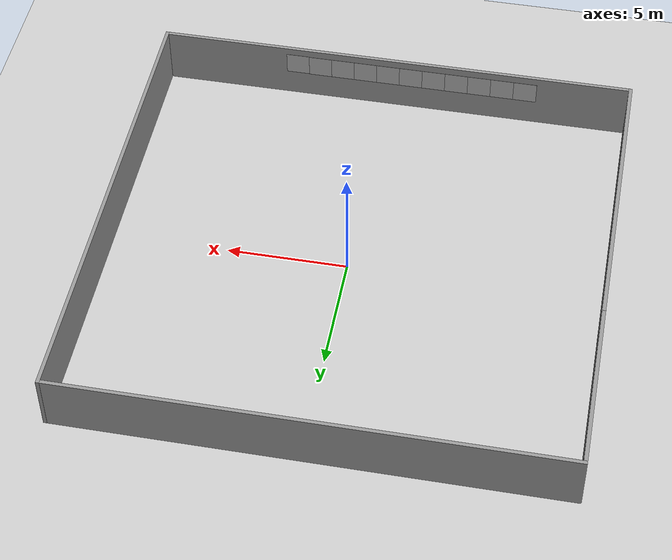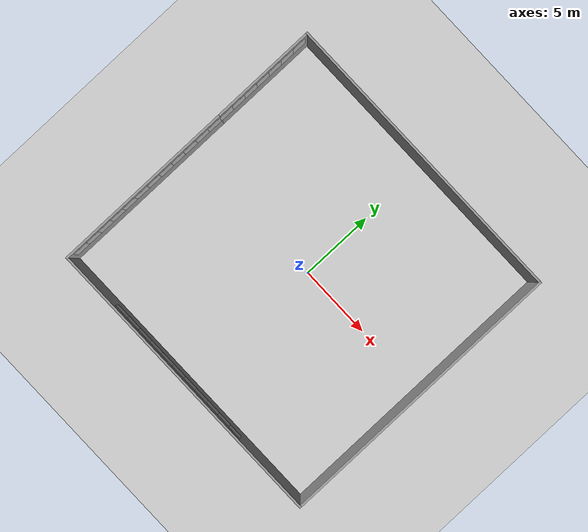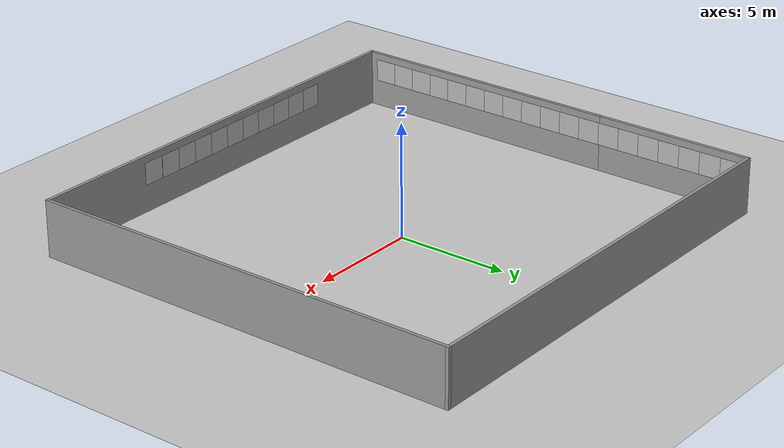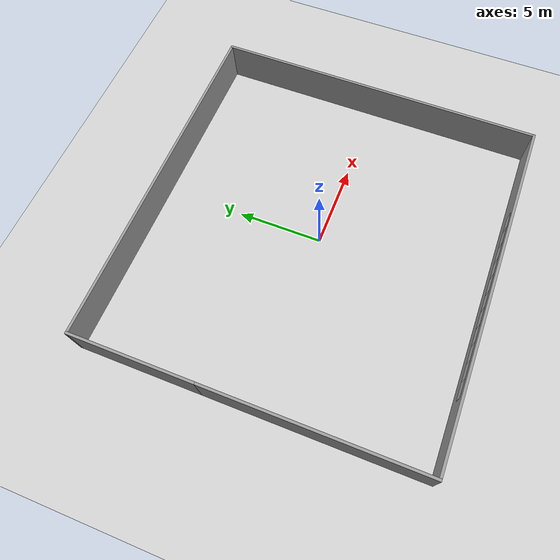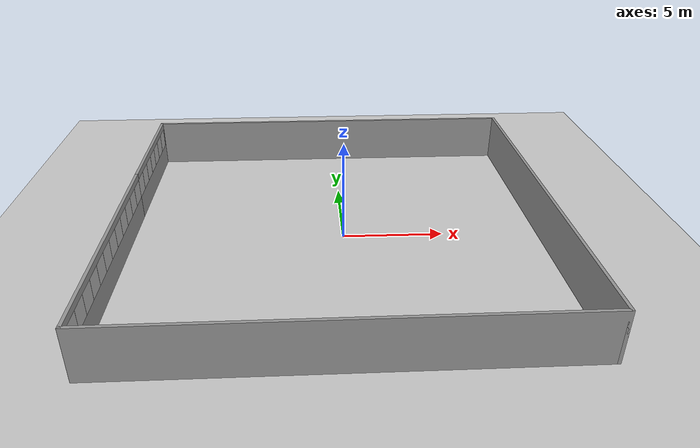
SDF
<sdf version="1.7">
 <world name="default">
  <physics type="ode">
   <ode>
    <solver>
     <type>quick</type>
     <iters>100</iters>
     <sor>1</sor>
     <use_dynamic_moi_rescaling>0</use_dynamic_moi_rescaling>
    </solver>
    <constraints>
     <cfm>0</cfm>
     <erp>0.9</erp>
     <contact_max_correcting_vel>0.1</contact_max_correcting_vel>
     <contact_surface_layer>0</contact_surface_layer>
    </constraints>
   </ode>
   <real_time_update_rate>100</real_time_update_rate>
   <max_step_size>0.001</max_step_size>
   <real_time_factor>1</real_time_factor>
  </physics>
  <model name="ground_plane">
   <static>1</static>
   <link name="link">
    <collision name="collision">
     <geometry><plane><normal>0 0 1</normal><size>5000 5000</size></plane></geometry>
     <surface><friction><ode><mu>1</mu><mu2>1</mu2></ode></friction></surface>
    </collision>
    <visual name="runway">
     <pose>0 0 0.005 0 -0 0</pose>
     <cast_shadows>0</cast_shadows>
     <geometry><plane><normal>0 0 1</normal><size>1829 45</size></plane></geometry>
     <material>
      <script><uri>file://media/materials/scripts/gazebo.material</uri><name>Gazebo/Runway</name></script>
     </material>
    </visual>
    <visual name="grass">
     <pose>0 0 -0.1 0 -0 0</pose>
     <cast_shadows>0</cast_shadows>
     <geometry><plane><normal>0 0 1</normal><size>5000 5000</size></plane></geometry>
     <material>
      <script><uri>file://media/materials/scripts/gazebo.material</uri><name>Gazebo/Grass</name></script>
     </material>
    </visual>
   </link>
  </model>
  <light name="sun" type="directional">
   <pose>0 0 10 0 -0 0</pose>
   <diffuse>0.8 0.8 0.8 1</diffuse>
   <specular>0.2 0.2 0.2 1</specular>
   <attenuation>
    <range>1000</range>
    <constant>0.9</constant>
    <linear>0.01</linear>
    <quadratic>0.001</quadratic>
   </attenuation>
   <direction>-0.5 0.1 -0.9</direction>
   <spot><inner_angle>0</inner_angle><outer_angle>0</outer_angle><falloff>0</falloff></spot>
  </light>
  <gravity>0 0 -9.8</gravity>
  <magnetic_field>6e-06 2.3e-05 -4.2e-05</magnetic_field>
  <atmosphere type="adiabatic"/>
  <scene><ambient>0.4 0.4 0.4 1</ambient><background>0.7 0.7 0.7 1</background><shadows>1</shadows></scene>
  <spherical_coordinates>
   <surface_model>EARTH_WGS84</surface_model>
   <latitude_deg>0</latitude_deg>
   <longitude_deg>0</longitude_deg>
   <elevation>0</elevation>
   <heading_deg>0</heading_deg>
  </spherical_coordinates>
  <model name="runaway_apriltag">
   <pose>-0.3068 -0.07056 0 0 -0 0</pose>
   <link name="Wall_21">
    <collision name="Wall_21_Collision">
     <geometry><box><size>12.5 0.15 2.5</size></box></geometry>
     <pose>0 0 1.25 0 -0 0</pose>
    </collision>
    <visual name="Wall_21_Visual">
     <pose>0 0 1.25 0 -0 0</pose>
     <geometry><box><size>12.5 0.15 2.5</size></box></geometry>
     <material>
      <script><uri>file://media/materials/scripts/gazebo.material</uri><name>Gazebo/Grey</name></script>
      <ambient>1 1 1 1</ambient>
     </material>
     <meta><layer>0</layer></meta>
    </visual>
    <pose>-10.175 -3.625 0 0 -0 -1.5708</pose>
   </link>
   <link name="Wall_22">
    <collision name="Wall_22_Collision">
     <geometry><box><size>20.5 0.15 2.5</size></box></geometry>
     <pose>0 0 1.25 0 -0 0</pose>
    </collision>
    <visual name="Wall_22_Visual">
     <pose>0 0 1.25 0 -0 0</pose>
     <geometry><box><size>20.5 0.15 2.5</size></box></geometry>
     <material>
      <script><uri>file://media/materials/scripts/gazebo.material</uri><name>Gazebo/Grey</name></script>
      <ambient>1 1 1 1</ambient>
     </material>
     <meta><layer>0</layer></meta>
    </visual>
    <pose>-0 -9.8 0 0 -0 0</pose>
   </link>
   <link name="Wall_23">
    <collision name="Wall_23_Collision">
     <geometry><box><size>19.75 0.15 2.5</size></box></geometry>
     <pose>0 0 1.25 0 -0 0</pose>
    </collision>
    <visual name="Wall_23_Visual">
     <pose>0 0 1.25 0 -0 0</pose>
     <geometry><box><size>19.75 0.15 2.5</size></box></geometry>
     <material>
      <script><uri>file://media/materials/scripts/gazebo.material</uri><name>Gazebo/Grey</name></script>
      <ambient>1 1 1 1</ambient>
     </material>
     <meta><layer>0</layer></meta>
    </visual>
    <pose>10.175 0 0 0 -0 1.5708</pose>
   </link>
   <link name="Wall_24">
    <collision name="Wall_24_Collision">
     <geometry><box><size>20.5 0.15 2.5</size></box></geometry>
     <pose>0 0 1.25 0 -0 0</pose>
    </collision>
    <visual name="Wall_24_Visual">
     <pose>0 0 1.25 0 -0 0</pose>
     <geometry><box><size>20.5 0.15 2.5</size></box></geometry>
     <material>
      <script><uri>file://media/materials/scripts/gazebo.material</uri><name>Gazebo/Grey</name></script>
      <ambient>1 1 1 1</ambient>
     </material>
     <meta><layer>0</layer></meta>
    </visual>
    <pose>-0 9.8 0 0 -0 3.14159</pose>
   </link>
   <link name="Wall_25">
    <collision name="Wall_25_Collision">
     <geometry><box><size>7.25 0.15 2.5</size></box></geometry>
     <pose>0 0 1.25 0 -0 0</pose>
    </collision>
    <visual name="Wall_25_Visual">
     <pose>0 0 1.25 0 -0 0</pose>
     <geometry><box><size>7.25 0.15 2.5</size></box></geometry>
     <material>
      <script><uri>file://media/materials/scripts/gazebo.material</uri><name>Gazebo/Grey</name></script>
      <ambient>1 1 1 1</ambient>
     </material>
     <meta><layer>0</layer></meta>
    </visual>
    <pose>-10.175 6.25 0 0 -0 -1.5708</pose>
   </link>
   <static>1</static>
  </model>
  <model name="Apriltag36_11_00000">
   <link name="main">
    <visual name="main_Visual">
     <geometry><box><size>1 1 0.01</size></box></geometry>
     <material>
      <script>
       <uri>model://Apriltag36_11_00000/materials/scripts</uri>
       <uri>model://Apriltag36_11_00000/materials/textures</uri>
       <name>Apriltag36_11_00000</name>
      </script>
     </material>
    </visual>
   </link>
   <static>1</static>
   <pose>4 -9.79002 1.69225 -1.58777 0 0</pose>
  </model>
  <model name="Apriltag36_11_00001">
   <link name="main">
    <visual name="main_Visual">
     <geometry><box><size>1 1 0.01</size></box></geometry>
     <material>
      <script>
       <uri>model://Apriltag36_11_00001/materials/scripts</uri>
       <uri>model://Apriltag36_11_00001/materials/textures</uri>
       <name>Apriltag36_11_00001</name>
      </script>
     </material>
    </visual>
   </link>
   <static>1</static>
   <pose>3 -9.77596 1.69225 -1.58777 0 0</pose>
  </model>
  <model name="Apriltag36_11_00002">
   <link name="main">
    <visual name="main_Visual">
     <geometry><box><size>1 1 0.01</size></box></geometry>
     <material>
      <script>
       <uri>model://Apriltag36_11_00002/materials/scripts</uri>
       <uri>model://Apriltag36_11_00002/materials/textures</uri>
       <name>Apriltag36_11_00002</name>
      </script>
     </material>
    </visual>
   </link>
   <static>1</static>
   <pose>2 -9.77596 1.69225 -1.58777 0 0</pose>
  </model>
  <model name="Apriltag36_11_00003">
   <link name="main">
    <visual name="main_Visual">
     <geometry><box><size>1 1 0.01</size></box></geometry>
     <material>
      <script>
       <uri>model://Apriltag36_11_00003/materials/scripts</uri>
       <uri>model://Apriltag36_11_00003/materials/textures</uri>
       <name>Apriltag36_11_00003</name>
      </script>
     </material>
    </visual>
   </link>
   <static>1</static>
   <pose>1 -9.77596 1.69225 -1.58777 0 0</pose>
  </model>
  <model name="Apriltag36_11_00004">
   <link name="main">
    <visual name="main_Visual">
     <geometry><box><size>1 1 0.01</size></box></geometry>
     <material>
      <script>
       <uri>model://Apriltag36_11_00004/materials/scripts</uri>
       <uri>model://Apriltag36_11_00004/materials/textures</uri>
       <name>Apriltag36_11_00004</name>
      </script>
     </material>
    </visual>
   </link>
   <static>1</static>
   <pose>0 -9.77596 1.69225 -1.58777 0 0</pose>
  </model>
  <model name="Apriltag36_11_00005">
   <link name="main">
    <visual name="main_Visual">
     <geometry><box><size>1 1 0.01</size></box></geometry>
     <material>
      <script>
       <uri>model://Apriltag36_11_00005/materials/scripts</uri>
       <uri>model://Apriltag36_11_00005/materials/textures</uri>
       <name>Apriltag36_11_00005</name>
      </script>
     </material>
    </visual>
   </link>
   <static>1</static>
   <pose>-1 -9.77596 1.69225 -1.58777 0 0</pose>
  </model>
  <model name="Apriltag36_11_00006">
   <link name="main">
    <visual name="main_Visual">
     <geometry><box><size>1 1 0.01</size></box></geometry>
     <material>
      <script>
       <uri>model://Apriltag36_11_00006/materials/scripts</uri>
       <uri>model://Apriltag36_11_00006/materials/textures</uri>
       <name>Apriltag36_11_00006</name>
      </script>
     </material>
    </visual>
   </link>
   <static>1</static>
   <pose>-2 -9.77596 1.69225 -1.58777 0 0</pose>
  </model>
  <model name="Apriltag36_11_00007">
   <link name="main">
    <visual name="main_Visual">
     <geometry><box><size>1 1 0.01</size></box></geometry>
     <material>
      <script>
       <uri>model://Apriltag36_11_00007/materials/scripts</uri>
       <uri>model://Apriltag36_11_00007/materials/textures</uri>
       <name>Apriltag36_11_00007</name>
      </script>
     </material>
    </visual>
   </link>
   <static>1</static>
   <pose>-3 -9.77596 1.69225 -1.58777 0 0</pose>
  </model>
  <model name="Apriltag36_11_00008">
   <link name="main">
    <visual name="main_Visual">
     <geometry><box><size>1 1 0.01</size></box></geometry>
     <material>
      <script>
       <uri>model://Apriltag36_11_00008/materials/scripts</uri>
       <uri>model://Apriltag36_11_00008/materials/textures</uri>
       <name>Apriltag36_11_00008</name>
      </script>
     </material>
    </visual>
   </link>
   <static>1</static>
   <pose>-4 -9.77596 1.69225 -1.58777 0 0</pose>
  </model>
  <model name="Apriltag36_11_00009">
   <link name="main">
    <visual name="main_Visual">
     <geometry><box><size>1 1 0.01</size></box></geometry>
     <material>
      <script>
       <uri>model://Apriltag36_11_00009/materials/scripts</uri>
       <uri>model://Apriltag36_11_00009/materials/textures</uri>
       <name>Apriltag36_11_00009</name>
      </script>
     </material>
    </visual>
   </link>
   <static>1</static>
   <pose>-5 -9.77596 1.69225 -1.58777 0 0</pose>
  </model>
  <model name="Apriltag36_11_00010">
   <link name="main">
    <visual name="main_Visual">
     <geometry><box><size>1 1 0.01</size></box></geometry>
     <material>
      <script>
       <uri>model://Apriltag36_11_00010/materials/scripts</uri>
       <uri>model://Apriltag36_11_00010/materials/textures</uri>
       <name>Apriltag36_11_00010</name>
      </script>
     </material>
    </visual>
   </link>
   <static>1</static>
   <pose>-6 -9.77596 1.69225 -1.58777 0 0</pose>
  </model>
  <model name="Apriltag36_11_00010_1">
   <link name="main">
    <visual name="main_Visual">
     <geometry><box><size>1 1 0.01</size></box></geometry>
     <material>
      <script>
       <uri>model://Apriltag36_11_00010/materials/scripts</uri>
       <uri>model://Apriltag36_11_00010/materials/textures</uri>
       <name>Apriltag36_11_00010</name>
      </script>
     </material>
    </visual>
   </link>
   <static>1</static>
   <pose>-10.4087 -8 1.69217 -1.57082 0 -1.56919</pose>
  </model>
  <model name="Apriltag36_11_00009_1">
   <link name="main">
    <visual name="main_Visual">
     <geometry><box><size>1 1 0.01</size></box></geometry>
     <material>
      <script>
       <uri>model://Apriltag36_11_00009/materials/scripts</uri>
       <uri>model://Apriltag36_11_00009/materials/textures</uri>
       <name>Apriltag36_11_00009</name>
      </script>
     </material>
    </visual>
   </link>
   <static>1</static>
   <pose>-10.4087 -7 1.69217 -1.57082 0 -1.56919</pose>
  </model>
  <model name="Apriltag36_11_00008_1">
   <link name="main">
    <visual name="main_Visual">
     <geometry><box><size>1 1 0.01</size></box></geometry>
     <material>
      <script>
       <uri>model://Apriltag36_11_00008/materials/scripts</uri>
       <uri>model://Apriltag36_11_00008/materials/textures</uri>
       <name>Apriltag36_11_00008</name>
      </script>
     </material>
    </visual>
   </link>
   <static>1</static>
   <pose>-10.4087 -6 1.69217 -1.57082 0 -1.56919</pose>
  </model>
  <model name="Apriltag36_11_00007_1">
   <link name="main">
    <visual name="main_Visual">
     <geometry><box><size>1 1 0.01</size></box></geometry>
     <material>
      <script>
       <uri>model://Apriltag36_11_00007/materials/scripts</uri>
       <uri>model://Apriltag36_11_00007/materials/textures</uri>
       <name>Apriltag36_11_00007</name>
      </script>
     </material>
    </visual>
   </link>
   <static>1</static>
   <pose>-10.4087 -5 1.69217 -1.57082 0 -1.56919</pose>
  </model>
  <model name="Apriltag36_11_00006_1">
   <link name="main">
    <visual name="main_Visual">
     <geometry><box><size>1 1 0.01</size></box></geometry>
     <material>
      <script>
       <uri>model://Apriltag36_11_00006/materials/scripts</uri>
       <uri>model://Apriltag36_11_00006/materials/textures</uri>
       <name>Apriltag36_11_00006</name>
      </script>
     </material>
    </visual>
   </link>
   <static>1</static>
   <pose>-10.4087 -4 1.69217 -1.57082 0 -1.56919</pose>
  </model>
  <model name="Apriltag36_11_00005_1">
   <link name="main">
    <visual name="main_Visual">
     <geometry><box><size>1 1 0.01</size></box></geometry>
     <material>
      <script>
       <uri>model://Apriltag36_11_00005/materials/scripts</uri>
       <uri>model://Apriltag36_11_00005/materials/textures</uri>
       <name>Apriltag36_11_00005</name>
      </script>
     </material>
    </visual>
   </link>
   <static>1</static>
   <pose>-10.4087 -3 1.69217 -1.57082 0 -1.56919</pose>
  </model>
  <model name="Apriltag36_11_00004_1">
   <link name="main">
    <visual name="main_Visual">
     <geometry><box><size>1 1 0.01</size></box></geometry>
     <material>
      <script>
       <uri>model://Apriltag36_11_00004/materials/scripts</uri>
       <uri>model://Apriltag36_11_00004/materials/textures</uri>
       <name>Apriltag36_11_00004</name>
      </script>
     </material>
    </visual>
   </link>
   <static>1</static>
   <pose>-10.4087 -2 1.69217 -1.57082 0 -1.56919</pose>
  </model>
  <model name="Apriltag36_11_00003_1">
   <link name="main">
    <visual name="main_Visual">
     <geometry><box><size>1 1 0.01</size></box></geometry>
     <material>
      <script>
       <uri>model://Apriltag36_11_00003/materials/scripts</uri>
       <uri>model://Apriltag36_11_00003/materials/textures</uri>
       <name>Apriltag36_11_00003</name>
      </script>
     </material>
    </visual>
   </link>
   <static>1</static>
   <pose>-10.4087 -1 1.69217 -1.57082 0 -1.56919</pose>
  </model>
  <model name="Apriltag36_11_00002_1">
   <link name="main">
    <visual name="main_Visual">
     <geometry><box><size>1 1 0.01</size></box></geometry>
     <material>
      <script>
       <uri>model://Apriltag36_11_00002/materials/scripts</uri>
       <uri>model://Apriltag36_11_00002/materials/textures</uri>
       <name>Apriltag36_11_00002</name>
      </script>
     </material>
    </visual>
   </link>
   <static>1</static>
   <pose>-10.4087 0 1.69217 -1.57082 0 -1.56919</pose>
  </model>
  <model name="Apriltag36_11_00001_1">
   <link name="main">
    <visual name="main_Visual">
     <geometry><box><size>1 1 0.01</size></box></geometry>
     <material>
      <script>
       <uri>model://Apriltag36_11_00001/materials/scripts</uri>
       <uri>model://Apriltag36_11_00001/materials/textures</uri>
       <name>Apriltag36_11_00001</name>
      </script>
     </material>
    </visual>
   </link>
   <static>1</static>
   <pose>-10.4087 1 1.69217 -1.57082 0 -1.56919</pose>
  </model>
  <model name="Apriltag36_11_00012_1">
   <link name="main">
    <visual name="main_Visual">
     <geometry><box><size>1 1 0.01</size></box></geometry>
     <material>
      <script>
       <uri>model://Apriltag36_11_00002/materials/scripts</uri>
       <uri>model://Apriltag36_11_00002/materials/textures</uri>
       <name>Apriltag36_11_00002</name>
      </script>
     </material>
    </visual>
   </link>
   <static>1</static>
   <pose>-10.4087 2 1.69217 -1.57082 0 -1.56919</pose>
  </model>
  <model name="Apriltag36_11_00013_1">
   <link name="main">
    <visual name="main_Visual">
     <geometry><box><size>1 1 0.01</size></box></geometry>
     <material>
      <script>
       <uri>model://Apriltag36_11_00003/materials/scripts</uri>
       <uri>model://Apriltag36_11_00003/materials/textures</uri>
       <name>Apriltag36_11_00003</name>
      </script>
     </material>
    </visual>
   </link>
   <static>1</static>
   <pose>-10.4087 3 1.69217 -1.57082 0 -1.56919</pose>
  </model>
  <model name="Apriltag36_11_00014_1">
   <link name="main">
    <visual name="main_Visual">
     <geometry><box><size>1 1 0.01</size></box></geometry>
     <material>
      <script>
       <uri>model://Apriltag36_11_00004/materials/scripts</uri>
       <uri>model://Apriltag36_11_00004/materials/textures</uri>
       <name>Apriltag36_11_00004</name>
      </script>
     </material>
    </visual>
   </link>
   <static>1</static>
   <pose>-10.4087 4 1.69217 -1.57082 0 -1.56919</pose>
  </model>
  <model name="Apriltag36_11_00015_1">
   <link name="main">
    <visual name="main_Visual">
     <geometry><box><size>1 1 0.01</size></box></geometry>
     <material>
      <script>
       <uri>model://Apriltag36_11_00005/materials/scripts</uri>
       <uri>model://Apriltag36_11_00005/materials/textures</uri>
       <name>Apriltag36_11_00005</name>
      </script>
     </material>
    </visual>
   </link>
   <static>1</static>
   <pose>-10.4087 5 1.69217 -1.57082 0 -1.56919</pose>
  </model>
  <model name="Apriltag36_11_00016_1">
   <link name="main">
    <visual name="main_Visual">
     <geometry><box><size>1 1 0.01</size></box></geometry>
     <material>
      <script>
       <uri>model://Apriltag36_11_00006/materials/scripts</uri>
       <uri>model://Apriltag36_11_00006/materials/textures</uri>
       <name>Apriltag36_11_00006</name>
      </script>
     </material>
    </visual>
   </link>
   <static>1</static>
   <pose>-10.4087 6 1.69217 -1.57082 0 -1.56919</pose>
  </model>
  <model name="Apriltag36_11_00017_1">
   <link name="main">
    <visual name="main_Visual">
     <geometry><box><size>1 1 0.01</size></box></geometry>
     <material>
      <script>
       <uri>model://Apriltag36_11_00007/materials/scripts</uri>
       <uri>model://Apriltag36_11_00007/materials/textures</uri>
       <name>Apriltag36_11_00007</name>
      </script>
     </material>
    </visual>
   </link>
   <static>1</static>
   <pose>-10.4087 7 1.69217 -1.57082 0 -1.56919</pose>
  </model>
  <model name="Apriltag36_11_00018_1">
   <link name="main">
    <visual name="main_Visual">
     <geometry><box><size>1 1 0.01</size></box></geometry>
     <material>
      <script>
       <uri>model://Apriltag36_11_00008/materials/scripts</uri>
       <uri>model://Apriltag36_11_00008/materials/textures</uri>
       <name>Apriltag36_11_00008</name>
      </script>
     </material>
    </visual>
   </link>
   <static>1</static>
   <pose>-10.4087 8 1.69217 -1.57082 0 -1.56919</pose>
  </model>
  <model name="Apriltag36_11_00019_1">
   <link name="main">
    <visual name="main_Visual">
     <geometry><box><size>1 1 0.01</size></box></geometry>
     <material>
      <script>
       <uri>model://Apriltag36_11_00009/materials/scripts</uri>
       <uri>model://Apriltag36_11_00009/materials/textures</uri>
       <name>Apriltag36_11_00009</name>
      </script>
     </material>
    </visual>
   </link>
   <static>1</static>
   <pose>-10.4087 9 1.69217 -1.57082 0 -1.56919</pose>
  </model>
  <model name="Apriltag36_11_00020_1">
   <link name="main">
    <visual name="main_Visual">
     <geometry><box><size>1 1 0.01</size></box></geometry>
     <material>
      <script>
       <uri>model://Apriltag36_11_00001/materials/scripts</uri>
       <uri>model://Apriltag36_11_00001/materials/textures</uri>
       <name>Apriltag36_11_00001</name>
      </script>
     </material>
    </visual>
   </link>
   <static>1</static>
   <pose>-10.4087 -9 1.69217 -1.57082 0 -1.56919</pose>
  </model>
 </world>
</sdf>
